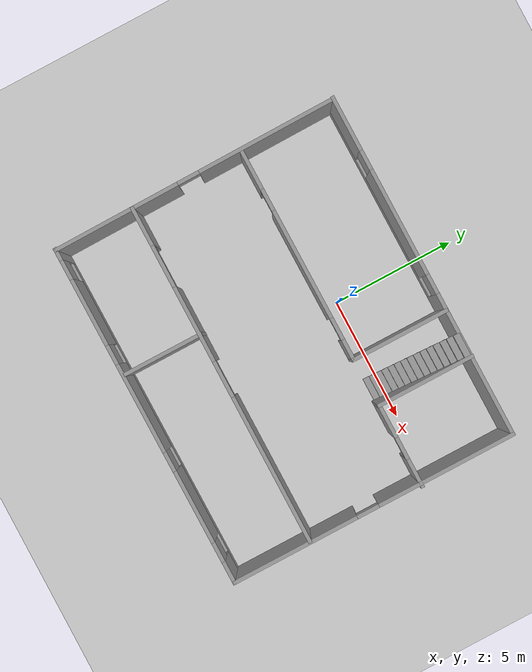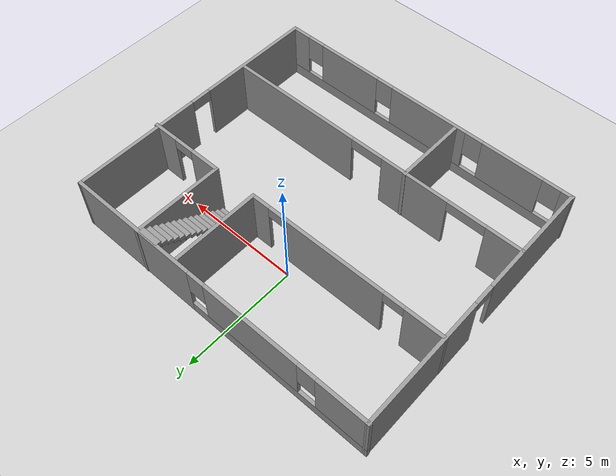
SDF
<sdf version="1.7">
 <world name="default">
  <light name="sun" type="directional">
   <pose>0 0 10 0 -0 0</pose>
   <diffuse>0.8 0.8 0.8 1</diffuse>
   <specular>0.2 0.2 0.2 1</specular>
   <attenuation>
    <range>1000</range>
    <constant>0.9</constant>
    <linear>0.01</linear>
    <quadratic>0.001</quadratic>
   </attenuation>
   <direction>-0.5 0.1 -0.9</direction>
   <spot><inner_angle>0</inner_angle><outer_angle>0</outer_angle><falloff>0</falloff></spot>
  </light>
  <model name="ground_plane">
   <static>1</static>
   <link name="link">
    <collision name="collision">
     <geometry><plane><normal>0 0 1</normal><size>100 100</size></plane></geometry>
     <surface>
      <contact><collide_bitmask>65535</collide_bitmask></contact>
      <friction><ode><mu>100</mu><mu2>50</mu2></ode></friction>
     </surface>
    </collision>
    <visual name="visual">
     <cast_shadows>0</cast_shadows>
     <geometry><plane><normal>0 0 1</normal><size>100 100</size></plane></geometry>
     <material>
      <script><uri>file://media/materials/scripts/gazebo.material</uri><name>Gazebo/Grey</name></script>
     </material>
    </visual>
   </link>
  </model>
  <gravity>0 0 -9.8</gravity>
  <magnetic_field>6e-06 2.3e-05 -4.2e-05</magnetic_field>
  <atmosphere type="adiabatic"/>
  <physics type="ode">
   <max_step_size>0.001</max_step_size>
   <real_time_factor>1</real_time_factor>
   <real_time_update_rate>1000</real_time_update_rate>
  </physics>
  <scene><ambient>0.4 0.4 0.4 1</ambient><background>0.7 0.7 0.7 1</background><shadows>1</shadows></scene>
  <spherical_coordinates>
   <surface_model>EARTH_WGS84</surface_model>
   <latitude_deg>0</latitude_deg>
   <longitude_deg>0</longitude_deg>
   <elevation>0</elevation>
   <heading_deg>0</heading_deg>
  </spherical_coordinates>
  <model name="terminal_corrior">
   <pose>0.389366 -2.50706 0 0 -0 0</pose>
   <link name="Stairs_0">
    <visual name="Stairs_0_Visual_0">
     <pose>3.18789 2.13283 0.083333 0 -0 -3.14159</pose>
     <geometry><box><size>0.915027 0.255099 0.166667</size></box></geometry>
     <material>
      <script><uri>file://media/materials/scripts/gazebo.material</uri><name>Gazebo/Grey</name></script>
      <ambient>1 1 1 1</ambient>
     </material>
     <meta><layer>0</layer></meta>
    </visual>
    <collision name="Stairs_0_Collision_0">
     <geometry><box><size>0.915027 0.255099 0.166667</size></box></geometry>
     <pose>3.18789 2.13283 0.083333 0 -0 -3.14159</pose>
    </collision>
    <visual name="Stairs_0_Visual_1">
     <pose>3.18789 2.38793 0.25 0 -0 -3.14159</pose>
     <geometry><box><size>0.915027 0.255099 0.166667</size></box></geometry>
     <material>
      <script><uri>file://media/materials/scripts/gazebo.material</uri><name>Gazebo/Grey</name></script>
      <ambient>1 1 1 1</ambient>
     </material>
     <meta><layer>0</layer></meta>
    </visual>
    <collision name="Stairs_0_Collision_1">
     <geometry><box><size>0.915027 0.255099 0.166667</size></box></geometry>
     <pose>3.18789 2.38793 0.25 0 -0 -3.14159</pose>
    </collision>
    <visual name="Stairs_0_Visual_2">
     <pose>3.18789 2.64303 0.416667 0 -0 -3.14159</pose>
     <geometry><box><size>0.915027 0.255099 0.166667</size></box></geometry>
     <material>
      <script><uri>file://media/materials/scripts/gazebo.material</uri><name>Gazebo/Grey</name></script>
      <ambient>1 1 1 1</ambient>
     </material>
     <meta><layer>0</layer></meta>
    </visual>
    <collision name="Stairs_0_Collision_2">
     <geometry><box><size>0.915027 0.255099 0.166667</size></box></geometry>
     <pose>3.18789 2.64303 0.416667 0 -0 -3.14159</pose>
    </collision>
    <visual name="Stairs_0_Visual_3">
     <pose>3.18789 2.89812 0.583333 0 -0 -3.14159</pose>
     <geometry><box><size>0.915027 0.255099 0.166667</size></box></geometry>
     <material>
      <script><uri>file://media/materials/scripts/gazebo.material</uri><name>Gazebo/Grey</name></script>
      <ambient>1 1 1 1</ambient>
     </material>
     <meta><layer>0</layer></meta>
    </visual>
    <collision name="Stairs_0_Collision_3">
     <geometry><box><size>0.915027 0.255099 0.166667</size></box></geometry>
     <pose>3.18789 2.89812 0.583333 0 -0 -3.14159</pose>
    </collision>
    <visual name="Stairs_0_Visual_4">
     <pose>3.18789 3.15322 0.75 0 -0 -3.14159</pose>
     <geometry><box><size>0.915027 0.255099 0.166667</size></box></geometry>
     <material>
      <script><uri>file://media/materials/scripts/gazebo.material</uri><name>Gazebo/Grey</name></script>
      <ambient>1 1 1 1</ambient>
     </material>
     <meta><layer>0</layer></meta>
    </visual>
    <collision name="Stairs_0_Collision_4">
     <geometry><box><size>0.915027 0.255099 0.166667</size></box></geometry>
     <pose>3.18789 3.15322 0.75 0 -0 -3.14159</pose>
    </collision>
    <visual name="Stairs_0_Visual_5">
     <pose>3.18789 3.40832 0.916667 0 -0 -3.14159</pose>
     <geometry><box><size>0.915027 0.255099 0.166667</size></box></geometry>
     <material>
      <script><uri>file://media/materials/scripts/gazebo.material</uri><name>Gazebo/Grey</name></script>
      <ambient>1 1 1 1</ambient>
     </material>
     <meta><layer>0</layer></meta>
    </visual>
    <collision name="Stairs_0_Collision_5">
     <geometry><box><size>0.915027 0.255099 0.166667</size></box></geometry>
     <pose>3.18789 3.40832 0.916667 0 -0 -3.14159</pose>
    </collision>
    <visual name="Stairs_0_Visual_6">
     <pose>3.18789 3.66342 1.08333 0 -0 -3.14159</pose>
     <geometry><box><size>0.915027 0.255099 0.166667</size></box></geometry>
     <material>
      <script><uri>file://media/materials/scripts/gazebo.material</uri><name>Gazebo/Grey</name></script>
      <ambient>1 1 1 1</ambient>
     </material>
     <meta><layer>0</layer></meta>
    </visual>
    <collision name="Stairs_0_Collision_6">
     <geometry><box><size>0.915027 0.255099 0.166667</size></box></geometry>
     <pose>3.18789 3.66342 1.08333 0 -0 -3.14159</pose>
    </collision>
    <visual name="Stairs_0_Visual_7">
     <pose>3.18789 3.91852 1.25 0 -0 -3.14159</pose>
     <geometry><box><size>0.915027 0.255099 0.166667</size></box></geometry>
     <material>
      <script><uri>file://media/materials/scripts/gazebo.material</uri><name>Gazebo/Grey</name></script>
      <ambient>1 1 1 1</ambient>
     </material>
     <meta><layer>0</layer></meta>
    </visual>
    <collision name="Stairs_0_Collision_7">
     <geometry><box><size>0.915027 0.255099 0.166667</size></box></geometry>
     <pose>3.18789 3.91852 1.25 0 -0 -3.14159</pose>
    </collision>
    <visual name="Stairs_0_Visual_8">
     <pose>3.18789 4.17362 1.41667 0 -0 -3.14159</pose>
     <geometry><box><size>0.915027 0.255099 0.166667</size></box></geometry>
     <material>
      <script><uri>file://media/materials/scripts/gazebo.material</uri><name>Gazebo/Grey</name></script>
      <ambient>1 1 1 1</ambient>
     </material>
     <meta><layer>0</layer></meta>
    </visual>
    <collision name="Stairs_0_Collision_8">
     <geometry><box><size>0.915027 0.255099 0.166667</size></box></geometry>
     <pose>3.18789 4.17362 1.41667 0 -0 -3.14159</pose>
    </collision>
    <visual name="Stairs_0_Visual_9">
     <pose>3.18789 4.42872 1.58333 0 -0 -3.14159</pose>
     <geometry><box><size>0.915027 0.255099 0.166667</size></box></geometry>
     <material>
      <script><uri>file://media/materials/scripts/gazebo.material</uri><name>Gazebo/Grey</name></script>
      <ambient>1 1 1 1</ambient>
     </material>
     <meta><layer>0</layer></meta>
    </visual>
    <collision name="Stairs_0_Collision_9">
     <geometry><box><size>0.915027 0.255099 0.166667</size></box></geometry>
     <pose>3.18789 4.42872 1.58333 0 -0 -3.14159</pose>
    </collision>
    <visual name="Stairs_0_Visual_10">
     <pose>3.18789 4.68382 1.75 0 -0 -3.14159</pose>
     <geometry><box><size>0.915027 0.255099 0.166667</size></box></geometry>
     <material>
      <script><uri>file://media/materials/scripts/gazebo.material</uri><name>Gazebo/Grey</name></script>
      <ambient>1 1 1 1</ambient>
     </material>
     <meta><layer>0</layer></meta>
    </visual>
    <collision name="Stairs_0_Collision_10">
     <geometry><box><size>0.915027 0.255099 0.166667</size></box></geometry>
     <pose>3.18789 4.68382 1.75 0 -0 -3.14159</pose>
    </collision>
    <visual name="Stairs_0_Visual_11">
     <pose>3.18789 4.93891 1.91667 0 -0 -3.14159</pose>
     <geometry><box><size>0.915027 0.255099 0.166667</size></box></geometry>
     <material>
      <script><uri>file://media/materials/scripts/gazebo.material</uri><name>Gazebo/Grey</name></script>
      <ambient>1 1 1 1</ambient>
     </material>
     <meta><layer>0</layer></meta>
    </visual>
    <collision name="Stairs_0_Collision_11">
     <geometry><box><size>0.915027 0.255099 0.166667</size></box></geometry>
     <pose>3.18789 4.93891 1.91667 0 -0 -3.14159</pose>
    </collision>
    <visual name="Stairs_0_Visual_12">
     <pose>3.18789 5.19401 2.08333 0 -0 -3.14159</pose>
     <geometry><box><size>0.915027 0.255099 0.166667</size></box></geometry>
     <material>
      <script><uri>file://media/materials/scripts/gazebo.material</uri><name>Gazebo/Grey</name></script>
      <ambient>1 1 1 1</ambient>
     </material>
     <meta><layer>0</layer></meta>
    </visual>
    <collision name="Stairs_0_Collision_12">
     <geometry><box><size>0.915027 0.255099 0.166667</size></box></geometry>
     <pose>3.18789 5.19401 2.08333 0 -0 -3.14159</pose>
    </collision>
    <visual name="Stairs_0_Visual_13">
     <pose>3.18789 5.44911 2.25 0 -0 -3.14159</pose>
     <geometry><box><size>0.915027 0.255099 0.166667</size></box></geometry>
     <material>
      <script><uri>file://media/materials/scripts/gazebo.material</uri><name>Gazebo/Grey</name></script>
      <ambient>1 1 1 1</ambient>
     </material>
     <meta><layer>0</layer></meta>
    </visual>
    <collision name="Stairs_0_Collision_13">
     <geometry><box><size>0.915027 0.255099 0.166667</size></box></geometry>
     <pose>3.18789 5.44911 2.25 0 -0 -3.14159</pose>
    </collision>
    <visual name="Stairs_0_Visual_14">
     <pose>3.18789 5.70421 2.41667 0 -0 -3.14159</pose>
     <geometry><box><size>0.915027 0.255099 0.166667</size></box></geometry>
     <material>
      <script><uri>file://media/materials/scripts/gazebo.material</uri><name>Gazebo/Grey</name></script>
      <ambient>1 1 1 1</ambient>
     </material>
     <meta><layer>0</layer></meta>
    </visual>
    <collision name="Stairs_0_Collision_14">
     <geometry><box><size>0.915027 0.255099 0.166667</size></box></geometry>
     <pose>3.18789 5.70421 2.41667 0 -0 -3.14159</pose>
    </collision>
   </link>
   <link name="Wall_10">
    <collision name="Wall_10_Collision">
     <geometry><box><size>4 0.15 2.5</size></box></geometry>
     <pose>0 0 1.25 0 -0 0</pose>
    </collision>
    <visual name="Wall_10_Visual">
     <pose>0 0 1.25 0 -0 0</pose>
     <geometry><box><size>4 0.15 2.5</size></box></geometry>
     <material>
      <script><uri>file://media/materials/scripts/gazebo.material</uri><name>Gazebo/Grey</name></script>
      <ambient>1 1 1 1</ambient>
     </material>
     <meta><layer>0</layer></meta>
    </visual>
    <pose>1.78855 3.87093 0 0 -0 1.5708</pose>
   </link>
   <link name="Wall_12">
    <collision name="Wall_12_Collision">
     <geometry><box><size>4 0.15 2.5</size></box></geometry>
     <pose>0 0 1.25 0 -0 0</pose>
    </collision>
    <visual name="Wall_12_Visual">
     <pose>0 0 1.25 0 -0 0</pose>
     <geometry><box><size>4 0.15 2.5</size></box></geometry>
     <material>
      <script><uri>file://media/materials/scripts/gazebo.material</uri><name>Gazebo/Grey</name></script>
      <ambient>1 1 1 1</ambient>
     </material>
     <meta><layer>0</layer></meta>
    </visual>
    <pose>3.71612 3.9089 0 0 -0 -1.5708</pose>
   </link>
   <link name="Wall_13">
    <pose>5.39112 1.9839 0 0 -0 0</pose>
    <visual name="Wall_13_Visual_0">
     <pose>-1.04586 0 1.25 0 -0 0</pose>
     <geometry><box><size>1.40827 0.15 2.5</size></box></geometry>
     <material>
      <script><uri>file://media/materials/scripts/gazebo.material</uri><name>Gazebo/Grey</name></script>
      <ambient>1 1 1 1</ambient>
     </material>
     <meta><layer>0</layer></meta>
    </visual>
    <collision name="Wall_13_Collision_0">
     <geometry><box><size>1.40827 0.15 2.5</size></box></geometry>
     <pose>-1.04586 0 1.25 0 -0 0</pose>
    </collision>
    <visual name="Wall_13_Visual_1">
     <pose>1.15414 0 1.25 0 -0 0</pose>
     <geometry><box><size>1.19173 0.15 2.5</size></box></geometry>
     <material>
      <script><uri>file://media/materials/scripts/gazebo.material</uri><name>Gazebo/Grey</name></script>
      <ambient>1 1 1 1</ambient>
     </material>
     <meta><layer>0</layer></meta>
    </visual>
    <collision name="Wall_13_Collision_1">
     <geometry><box><size>1.19173 0.15 2.5</size></box></geometry>
     <pose>1.15414 0 1.25 0 -0 0</pose>
    </collision>
    <visual name="Wall_13_Visual_2">
     <pose>0.108272 0 2.25 0 -0 0</pose>
     <geometry><box><size>0.9 0.15 0.5</size></box></geometry>
     <material>
      <script><uri>file://media/materials/scripts/gazebo.material</uri><name>Gazebo/Grey</name></script>
      <ambient>1 1 1 1</ambient>
     </material>
     <meta><layer>0</layer></meta>
    </visual>
    <collision name="Wall_13_Collision_2">
     <geometry><box><size>0.9 0.15 0.5</size></box></geometry>
     <pose>0.108272 0 2.25 0 -0 0</pose>
    </collision>
   </link>
   <link name="Wall_19">
    <pose>-0.013492 -2.6239 0 0 -0 0</pose>
    <visual name="Wall_19_Visual_0">
     <pose>-6.19271 0 1.25 0 -0 0</pose>
     <geometry><box><size>1.61458 0.15 2.5</size></box></geometry>
     <material>
      <script><uri>file://media/materials/scripts/gazebo.material</uri><name>Gazebo/Grey</name></script>
      <ambient>1 1 1 1</ambient>
     </material>
     <meta><layer>0</layer></meta>
    </visual>
    <collision name="Wall_19_Collision_0">
     <geometry><box><size>1.61458 0.15 2.5</size></box></geometry>
     <pose>-6.19271 0 1.25 0 -0 0</pose>
    </collision>
    <visual name="Wall_19_Visual_1">
     <pose>-2.11512 0 1.25 0 -0 0</pose>
     <geometry><box><size>3.09993 0.15 2.5</size></box></geometry>
     <material>
      <script><uri>file://media/materials/scripts/gazebo.material</uri><name>Gazebo/Grey</name></script>
      <ambient>1 1 1 1</ambient>
     </material>
     <meta><layer>0</layer></meta>
    </visual>
    <collision name="Wall_19_Collision_1">
     <geometry><box><size>3.09993 0.15 2.5</size></box></geometry>
     <pose>-2.11512 0 1.25 0 -0 0</pose>
    </collision>
    <visual name="Wall_19_Visual_2">
     <pose>3.96075 0 1.25 0 -0 0</pose>
     <geometry><box><size>6.0785 0.15 2.5</size></box></geometry>
     <material>
      <script><uri>file://media/materials/scripts/gazebo.material</uri><name>Gazebo/Grey</name></script>
      <ambient>1 1 1 1</ambient>
     </material>
     <meta><layer>0</layer></meta>
    </visual>
    <collision name="Wall_19_Collision_2">
     <geometry><box><size>6.0785 0.15 2.5</size></box></geometry>
     <pose>3.96075 0 1.25 0 -0 0</pose>
    </collision>
    <visual name="Wall_19_Visual_3">
     <pose>-4.52525 0 2.25 0 -0 0</pose>
     <geometry><box><size>1.72033 0.15 0.5</size></box></geometry>
     <material>
      <script><uri>file://media/materials/scripts/gazebo.material</uri><name>Gazebo/Grey</name></script>
      <ambient>1 1 1 1</ambient>
     </material>
     <meta><layer>0</layer></meta>
    </visual>
    <collision name="Wall_19_Collision_3">
     <geometry><box><size>1.72033 0.15 0.5</size></box></geometry>
     <pose>-4.52525 0 2.25 0 -0 0</pose>
    </collision>
    <visual name="Wall_19_Visual_4">
     <pose>0.178172 0 2.25 0 -0 0</pose>
     <geometry><box><size>1.48665 0.15 0.5</size></box></geometry>
     <material>
      <script><uri>file://media/materials/scripts/gazebo.material</uri><name>Gazebo/Grey</name></script>
      <ambient>1 1 1 1</ambient>
     </material>
     <meta><layer>0</layer></meta>
    </visual>
    <collision name="Wall_19_Collision_4">
     <geometry><box><size>1.48665 0.15 0.5</size></box></geometry>
     <pose>0.178172 0 2.25 0 -0 0</pose>
    </collision>
   </link>
   <link name="Wall_23">
    <collision name="Wall_23_Collision">
     <geometry><box><size>3.25 0.15 2.5</size></box></geometry>
     <pose>0 0 1.25 0 -0 0</pose>
    </collision>
    <visual name="Wall_23_Visual">
     <pose>0 0 1.25 0 -0 0</pose>
     <geometry><box><size>3.25 0.15 2.5</size></box></geometry>
     <material>
      <script><uri>file://media/materials/scripts/gazebo.material</uri><name>Gazebo/Grey</name></script>
      <ambient>1 1 1 1</ambient>
     </material>
     <meta><layer>0</layer></meta>
    </visual>
    <pose>-1.69137 -4.15633 0 0 -0 -1.5708</pose>
   </link>
   <link name="Wall_4">
    <pose>0.005186 -5.8059 0 0 -0 0.003919</pose>
    <visual name="Wall_4_Visual_0">
     <pose>-6.76353 0 1.25 0 -0 0</pose>
     <geometry><box><size>0.536892 0.15 2.5</size></box></geometry>
     <material>
      <script><uri>file://media/materials/scripts/gazebo.material</uri><name>Gazebo/Grey</name></script>
      <ambient>1 1 1 1</ambient>
     </material>
     <meta><layer>0</layer></meta>
    </visual>
    <collision name="Wall_4_Collision_0">
     <geometry><box><size>0.536892 0.15 2.5</size></box></geometry>
     <pose>-6.76353 0 1.25 0 -0 0</pose>
    </collision>
    <visual name="Wall_4_Visual_1">
     <pose>0.268446 0 0.25 0 -0 0</pose>
     <geometry><box><size>13.5271 0.15 0.5</size></box></geometry>
     <material>
      <script><uri>file://media/materials/scripts/gazebo.material</uri><name>Gazebo/Grey</name></script>
      <ambient>1 1 1 1</ambient>
     </material>
     <meta><layer>0</layer></meta>
    </visual>
    <collision name="Wall_4_Collision_1">
     <geometry><box><size>13.5271 0.15 0.5</size></box></geometry>
     <pose>0.268446 0 0.25 0 -0 0</pose>
    </collision>
    <visual name="Wall_4_Visual_2">
     <pose>-4.32508 0 1.5 0 -0 0</pose>
     <geometry><box><size>2.74001 0.15 2</size></box></geometry>
     <material>
      <script><uri>file://media/materials/scripts/gazebo.material</uri><name>Gazebo/Grey</name></script>
      <ambient>1 1 1 1</ambient>
     </material>
     <meta><layer>0</layer></meta>
    </visual>
    <collision name="Wall_4_Collision_2">
     <geometry><box><size>2.74001 0.15 2</size></box></geometry>
     <pose>-4.32508 0 1.5 0 -0 0</pose>
    </collision>
    <visual name="Wall_4_Visual_3">
     <pose>-0.322589 0 1.5 0 -0 0</pose>
     <geometry><box><size>3.66497 0.15 2</size></box></geometry>
     <material>
      <script><uri>file://media/materials/scripts/gazebo.material</uri><name>Gazebo/Grey</name></script>
      <ambient>1 1 1 1</ambient>
     </material>
     <meta><layer>0</layer></meta>
    </visual>
    <collision name="Wall_4_Collision_3">
     <geometry><box><size>3.66497 0.15 2</size></box></geometry>
     <pose>-0.322589 0 1.5 0 -0 0</pose>
    </collision>
    <visual name="Wall_4_Visual_4">
     <pose>3.80074 0 1.5 0 -0 0</pose>
     <geometry><box><size>2.98169 0.15 2</size></box></geometry>
     <material>
      <script><uri>file://media/materials/scripts/gazebo.material</uri><name>Gazebo/Grey</name></script>
      <ambient>1 1 1 1</ambient>
     </material>
     <meta><layer>0</layer></meta>
    </visual>
    <collision name="Wall_4_Collision_4">
     <geometry><box><size>2.98169 0.15 2</size></box></geometry>
     <pose>3.80074 0 1.5 0 -0 0</pose>
    </collision>
    <visual name="Wall_4_Visual_5">
     <pose>6.56178 0 1.5 0 -0 0</pose>
     <geometry><box><size>0.940394 0.15 2</size></box></geometry>
     <material>
      <script><uri>file://media/materials/scripts/gazebo.material</uri><name>Gazebo/Grey</name></script>
      <ambient>1 1 1 1</ambient>
     </material>
     <meta><layer>0</layer></meta>
    </visual>
    <collision name="Wall_4_Collision_5">
     <geometry><box><size>0.940394 0.15 2</size></box></geometry>
     <pose>6.56178 0 1.5 0 -0 0</pose>
    </collision>
    <visual name="Wall_4_Visual_6">
     <pose>-6.09509 0 1.9 0 -0 0</pose>
     <geometry><box><size>0.8 0.15 1.2</size></box></geometry>
     <material>
      <script><uri>file://media/materials/scripts/gazebo.material</uri><name>Gazebo/Grey</name></script>
      <ambient>1 1 1 1</ambient>
     </material>
     <meta><layer>0</layer></meta>
    </visual>
    <collision name="Wall_4_Collision_6">
     <geometry><box><size>0.8 0.15 1.2</size></box></geometry>
     <pose>-6.09509 0 1.9 0 -0 0</pose>
    </collision>
    <visual name="Wall_4_Visual_7">
     <pose>-2.55507 0 1.9 0 -0 0</pose>
     <geometry><box><size>0.8 0.15 1.2</size></box></geometry>
     <material>
      <script><uri>file://media/materials/scripts/gazebo.material</uri><name>Gazebo/Grey</name></script>
      <ambient>1 1 1 1</ambient>
     </material>
     <meta><layer>0</layer></meta>
    </visual>
    <collision name="Wall_4_Collision_7">
     <geometry><box><size>0.8 0.15 1.2</size></box></geometry>
     <pose>-2.55507 0 1.9 0 -0 0</pose>
    </collision>
    <visual name="Wall_4_Visual_8">
     <pose>1.90989 0 1.9 0 -0 0</pose>
     <geometry><box><size>0.8 0.15 1.2</size></box></geometry>
     <material>
      <script><uri>file://media/materials/scripts/gazebo.material</uri><name>Gazebo/Grey</name></script>
      <ambient>1 1 1 1</ambient>
     </material>
     <meta><layer>0</layer></meta>
    </visual>
    <collision name="Wall_4_Collision_8">
     <geometry><box><size>0.8 0.15 1.2</size></box></geometry>
     <pose>1.90989 0 1.9 0 -0 0</pose>
    </collision>
    <visual name="Wall_4_Visual_9">
     <pose>5.69158 0 1.9 0 -0 0</pose>
     <geometry><box><size>0.8 0.15 1.2</size></box></geometry>
     <material>
      <script><uri>file://media/materials/scripts/gazebo.material</uri><name>Gazebo/Grey</name></script>
      <ambient>1 1 1 1</ambient>
     </material>
     <meta><layer>0</layer></meta>
    </visual>
    <collision name="Wall_4_Collision_9">
     <geometry><box><size>0.8 0.15 1.2</size></box></geometry>
     <pose>5.69158 0 1.9 0 -0 0</pose>
    </collision>
   </link>
   <link name="Wall_5">
    <pose>6.96211 0.021361 0 0 -0 1.5708</pose>
    <visual name="Wall_5_Visual_0">
     <pose>-3.28127 0 1.25 0 -0 0</pose>
     <geometry><box><size>5.18745 0.15 2.5</size></box></geometry>
     <material>
      <script><uri>file://media/materials/scripts/gazebo.material</uri><name>Gazebo/Grey</name></script>
      <ambient>1 1 1 1</ambient>
     </material>
     <meta><layer>0</layer></meta>
    </visual>
    <collision name="Wall_5_Collision_0">
     <geometry><box><size>5.18745 0.15 2.5</size></box></geometry>
     <pose>-3.28127 0 1.25 0 -0 0</pose>
    </collision>
    <visual name="Wall_5_Visual_1">
     <pose>3.04373 0 1.25 0 -0 0</pose>
     <geometry><box><size>5.66254 0.15 2.5</size></box></geometry>
     <material>
      <script><uri>file://media/materials/scripts/gazebo.material</uri><name>Gazebo/Grey</name></script>
      <ambient>1 1 1 1</ambient>
     </material>
     <meta><layer>0</layer></meta>
    </visual>
    <collision name="Wall_5_Collision_1">
     <geometry><box><size>5.66254 0.15 2.5</size></box></geometry>
     <pose>3.04373 0 1.25 0 -0 0</pose>
    </collision>
    <visual name="Wall_5_Visual_2">
     <pose>-0.237545 0 2.25 0 -0 0</pose>
     <geometry><box><size>0.9 0.15 0.5</size></box></geometry>
     <material>
      <script><uri>file://media/materials/scripts/gazebo.material</uri><name>Gazebo/Grey</name></script>
      <ambient>1 1 1 1</ambient>
     </material>
     <meta><layer>0</layer></meta>
    </visual>
    <collision name="Wall_5_Collision_2">
     <geometry><box><size>0.9 0.15 0.5</size></box></geometry>
     <pose>-0.237545 0 2.25 0 -0 0</pose>
    </collision>
   </link>
   <link name="Wall_6">
    <pose>-0.051932 5.8078 0 0 -0 -3.13966</pose>
    <visual name="Wall_6_Visual_0">
     <pose>-4.11566 0 1.25 0 -0 0</pose>
     <geometry><box><size>5.94681 0.15 2.5</size></box></geometry>
     <material>
      <script><uri>file://media/materials/scripts/gazebo.material</uri><name>Gazebo/Grey</name></script>
      <ambient>1 1 1 1</ambient>
     </material>
     <meta><layer>0</layer></meta>
    </visual>
    <collision name="Wall_6_Collision_0">
     <geometry><box><size>5.94681 0.15 2.5</size></box></geometry>
     <pose>-4.11566 0 1.25 0 -0 0</pose>
    </collision>
    <visual name="Wall_6_Visual_1">
     <pose>2.9734 0 0.25 0 -0 0</pose>
     <geometry><box><size>8.23131 0.15 0.5</size></box></geometry>
     <material>
      <script><uri>file://media/materials/scripts/gazebo.material</uri><name>Gazebo/Grey</name></script>
      <ambient>1 1 1 1</ambient>
     </material>
     <meta><layer>0</layer></meta>
    </visual>
    <collision name="Wall_6_Collision_1">
     <geometry><box><size>8.23131 0.15 0.5</size></box></geometry>
     <pose>2.9734 0 0.25 0 -0 0</pose>
    </collision>
    <visual name="Wall_6_Visual_2">
     <pose>1.84356 0 1.5 0 -0 0</pose>
     <geometry><box><size>4.37162 0.15 2</size></box></geometry>
     <material>
      <script><uri>file://media/materials/scripts/gazebo.material</uri><name>Gazebo/Grey</name></script>
      <ambient>1 1 1 1</ambient>
     </material>
     <meta><layer>0</layer></meta>
    </visual>
    <collision name="Wall_6_Collision_2">
     <geometry><box><size>4.37162 0.15 2</size></box></geometry>
     <pose>1.84356 0 1.5 0 -0 0</pose>
    </collision>
    <visual name="Wall_6_Visual_3">
     <pose>5.95921 0 1.5 0 -0 0</pose>
     <geometry><box><size>2.25969 0.15 2</size></box></geometry>
     <material>
      <script><uri>file://media/materials/scripts/gazebo.material</uri><name>Gazebo/Grey</name></script>
      <ambient>1 1 1 1</ambient>
     </material>
     <meta><layer>0</layer></meta>
    </visual>
    <collision name="Wall_6_Collision_3">
     <geometry><box><size>2.25969 0.15 2</size></box></geometry>
     <pose>5.95921 0 1.5 0 -0 0</pose>
    </collision>
    <visual name="Wall_6_Visual_4">
     <pose>-0.742252 0 1.9 0 -0 0</pose>
     <geometry><box><size>0.8 0.15 1.2</size></box></geometry>
     <material>
      <script><uri>file://media/materials/scripts/gazebo.material</uri><name>Gazebo/Grey</name></script>
      <ambient>1 1 1 1</ambient>
     </material>
     <meta><layer>0</layer></meta>
    </visual>
    <collision name="Wall_6_Collision_4">
     <geometry><box><size>0.8 0.15 1.2</size></box></geometry>
     <pose>-0.742252 0 1.9 0 -0 0</pose>
    </collision>
    <visual name="Wall_6_Visual_5">
     <pose>4.42937 0 1.9 0 -0 0</pose>
     <geometry><box><size>0.8 0.15 1.2</size></box></geometry>
     <material>
      <script><uri>file://media/materials/scripts/gazebo.material</uri><name>Gazebo/Grey</name></script>
      <ambient>1 1 1 1</ambient>
     </material>
     <meta><layer>0</layer></meta>
    </visual>
    <collision name="Wall_6_Collision_5">
     <geometry><box><size>0.8 0.15 1.2</size></box></geometry>
     <pose>4.42937 0 1.9 0 -0 0</pose>
    </collision>
   </link>
   <link name="Wall_7">
    <pose>-6.98173 -0.019464 0 0 -0 -1.56097</pose>
    <visual name="Wall_7_Visual_0">
     <pose>-3.03778 0 1.25 0 -0 0</pose>
     <geometry><box><size>5.70241 0.15 2.5</size></box></geometry>
     <material>
      <script><uri>file://media/materials/scripts/gazebo.material</uri><name>Gazebo/Grey</name></script>
      <ambient>1 1 1 1</ambient>
     </material>
     <meta><layer>0</layer></meta>
    </visual>
    <collision name="Wall_7_Collision_0">
     <geometry><box><size>5.70241 0.15 2.5</size></box></geometry>
     <pose>-3.03778 0 1.25 0 -0 0</pose>
    </collision>
    <visual name="Wall_7_Visual_1">
     <pose>3.3012 0 1.25 0 -0 0</pose>
     <geometry><box><size>5.17556 0.15 2.5</size></box></geometry>
     <material>
      <script><uri>file://media/materials/scripts/gazebo.material</uri><name>Gazebo/Grey</name></script>
      <ambient>1 1 1 1</ambient>
     </material>
     <meta><layer>0</layer></meta>
    </visual>
    <collision name="Wall_7_Collision_1">
     <geometry><box><size>5.17556 0.15 2.5</size></box></geometry>
     <pose>3.3012 0 1.25 0 -0 0</pose>
    </collision>
    <visual name="Wall_7_Visual_2">
     <pose>0.263425 0 2.25 0 -0 0</pose>
     <geometry><box><size>0.9 0.15 0.5</size></box></geometry>
     <material>
      <script><uri>file://media/materials/scripts/gazebo.material</uri><name>Gazebo/Grey</name></script>
      <ambient>1 1 1 1</ambient>
     </material>
     <meta><layer>0</layer></meta>
    </visual>
    <collision name="Wall_7_Collision_2">
     <geometry><box><size>0.9 0.15 0.5</size></box></geometry>
     <pose>0.263425 0 2.25 0 -0 0</pose>
    </collision>
   </link>
   <link name="Wall_9">
    <pose>-2.62454 1.928 0 0 -0 0.004097</pose>
    <visual name="Wall_9_Visual_0">
     <pose>-3.58053 0 1.25 0 -0 0</pose>
     <geometry><box><size>1.74346 0.15 2.5</size></box></geometry>
     <material>
      <script><uri>file://media/materials/scripts/gazebo.material</uri><name>Gazebo/Grey</name></script>
      <ambient>1 1 1 1</ambient>
     </material>
     <meta><layer>0</layer></meta>
    </visual>
    <collision name="Wall_9_Collision_0">
     <geometry><box><size>1.74346 0.15 2.5</size></box></geometry>
     <pose>-3.58053 0 1.25 0 -0 0</pose>
    </collision>
    <visual name="Wall_9_Visual_1">
     <pose>0.431559 0 1.25 0 -0 0</pose>
     <geometry><box><size>4.48071 0.15 2.5</size></box></geometry>
     <material>
      <script><uri>file://media/materials/scripts/gazebo.material</uri><name>Gazebo/Grey</name></script>
      <ambient>1 1 1 1</ambient>
     </material>
     <meta><layer>0</layer></meta>
    </visual>
    <collision name="Wall_9_Collision_1">
     <geometry><box><size>4.48071 0.15 2.5</size></box></geometry>
     <pose>0.431559 0 1.25 0 -0 0</pose>
    </collision>
    <visual name="Wall_9_Visual_2">
     <pose>4.01209 0 1.25 0 -0 0</pose>
     <geometry><box><size>0.880344 0.15 2.5</size></box></geometry>
     <material>
      <script><uri>file://media/materials/scripts/gazebo.material</uri><name>Gazebo/Grey</name></script>
      <ambient>1 1 1 1</ambient>
     </material>
     <meta><layer>0</layer></meta>
    </visual>
    <collision name="Wall_9_Collision_2">
     <geometry><box><size>0.880344 0.15 2.5</size></box></geometry>
     <pose>4.01209 0 1.25 0 -0 0</pose>
    </collision>
    <visual name="Wall_9_Visual_3">
     <pose>-2.2588 0 2.25 0 -0 0</pose>
     <geometry><box><size>0.9 0.15 0.5</size></box></geometry>
     <material>
      <script><uri>file://media/materials/scripts/gazebo.material</uri><name>Gazebo/Grey</name></script>
      <ambient>1 1 1 1</ambient>
     </material>
     <meta><layer>0</layer></meta>
    </visual>
    <collision name="Wall_9_Collision_3">
     <geometry><box><size>0.9 0.15 0.5</size></box></geometry>
     <pose>-2.2588 0 2.25 0 -0 0</pose>
    </collision>
    <visual name="Wall_9_Visual_4">
     <pose>3.12191 0 2.25 0 -0 0</pose>
     <geometry><box><size>0.9 0.15 0.5</size></box></geometry>
     <material>
      <script><uri>file://media/materials/scripts/gazebo.material</uri><name>Gazebo/Grey</name></script>
      <ambient>1 1 1 1</ambient>
     </material>
     <meta><layer>0</layer></meta>
    </visual>
    <collision name="Wall_9_Collision_4">
     <geometry><box><size>0.9 0.15 0.5</size></box></geometry>
     <pose>3.12191 0 2.25 0 -0 0</pose>
    </collision>
   </link>
   <static>1</static>
  </model>
 </world>
</sdf>
